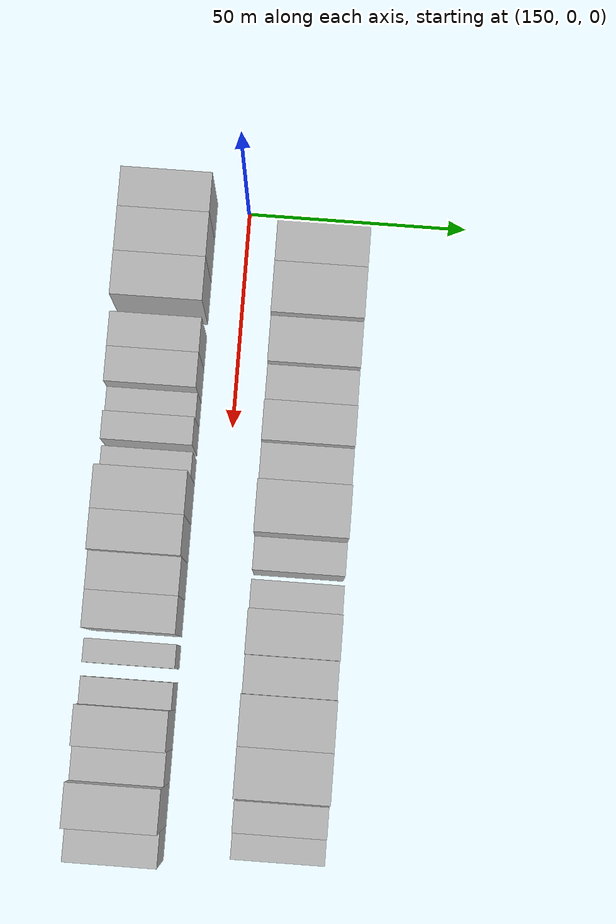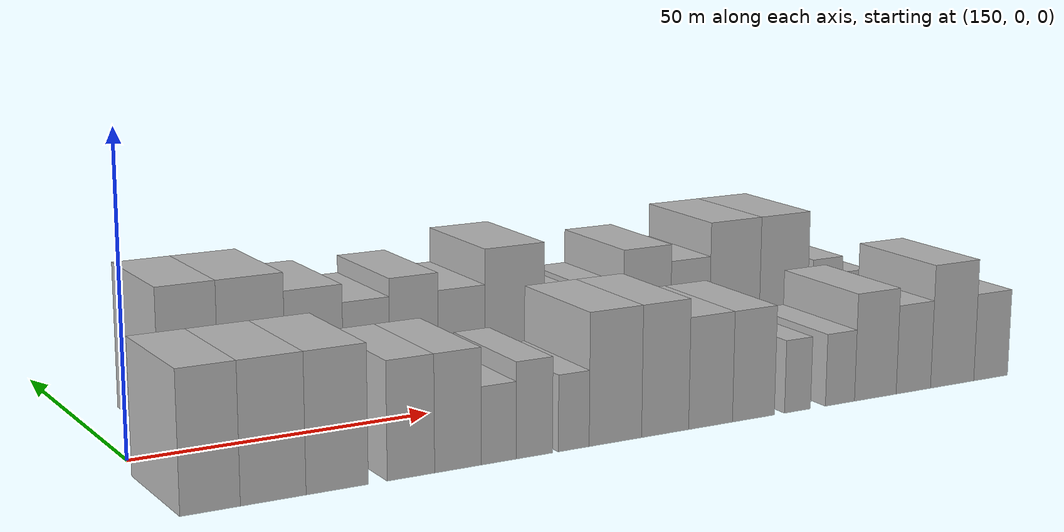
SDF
<sdf version="1.6">
 <world name="default">
  <model name="building_18">
   <static>1</static>
   <pose>162.6787 17.5000 0 0.000000 0.000000 1.570796</pose>
   <link name="link">
    <pose>0 0 12.00 0 0 0</pose>
    <collision name="collision"><geometry><box><size>20.0000 9.7751 24.0000</size></box></geometry></collision>
    <visual name="visual">
     <cast_shadows>0</cast_shadows>
     <geometry><box><size>20.0000 9.7751 24.0000</size></box></geometry>
     <material>
      <script>
       <uri>model://HANNAS_wall/materials/scripts</uri>
       <uri>model://HANNAS_wall/materials/textures</uri>
       <name>vrc/HANNAS_wall</name>
      </script>
     </material>
    </visual>
   </link>
  </model>
  <model name="building_19">
   <static>1</static>
   <pose>173.1793 17.5000 0 0.000000 0.000000 1.570796</pose>
   <link name="link">
    <pose>0 0 12.00 0 0 0</pose>
    <collision name="collision"><geometry><box><size>20.0000 11.2261 24.0000</size></box></geometry></collision>
    <visual name="visual">
     <cast_shadows>0</cast_shadows>
     <geometry><box><size>20.0000 11.2261 24.0000</size></box></geometry>
     <material>
      <script>
       <uri>model://HANNAS_wall/materials/scripts</uri>
       <uri>model://HANNAS_wall/materials/textures</uri>
       <name>vrc/HANNAS_wall</name>
      </script>
     </material>
    </visual>
   </link>
  </model>
  <model name="building_20">
   <static>1</static>
   <pose>183.7918 17.5000 0 0.000000 0.000000 1.570796</pose>
   <link name="link">
    <pose>0 0 10.50 0 0 0</pose>
    <collision name="collision"><geometry><box><size>20.0000 9.9990 21.0000</size></box></geometry></collision>
    <visual name="visual">
     <cast_shadows>0</cast_shadows>
     <geometry><box><size>20.0000 9.9990 21.0000</size></box></geometry>
     <material>
      <script>
       <uri>model://HANNAS_wall/materials/scripts</uri>
       <uri>model://HANNAS_wall/materials/textures</uri>
       <name>vrc/HANNAS_wall</name>
      </script>
     </material>
    </visual>
   </link>
  </model>
  <model name="building_21">
   <static>1</static>
   <pose>192.9205 17.5000 0 0.000000 0.000000 1.570796</pose>
   <link name="link">
    <pose>0 0 9.00 0 0 0</pose>
    <collision name="collision"><geometry><box><size>20.0000 8.2584 18.0000</size></box></geometry></collision>
    <visual name="visual">
     <cast_shadows>0</cast_shadows>
     <geometry><box><size>20.0000 8.2584 18.0000</size></box></geometry>
     <material>
      <script>
       <uri>model://HANNAS_wall/materials/scripts</uri>
       <uri>model://HANNAS_wall/materials/textures</uri>
       <name>vrc/HANNAS_wall</name>
      </script>
     </material>
    </visual>
   </link>
  </model>
  <model name="building_22">
   <static>1</static>
   <pose>201.4533 17.5000 0 0.000000 0.000000 1.570796</pose>
   <link name="link">
    <pose>0 0 10.50 0 0 0</pose>
    <collision name="collision"><geometry><box><size>20.0000 8.8072 21.0000</size></box></geometry></collision>
    <visual name="visual">
     <cast_shadows>0</cast_shadows>
     <geometry><box><size>20.0000 8.8072 21.0000</size></box></geometry>
     <material>
      <script>
       <uri>model://HANNAS_wall/materials/scripts</uri>
       <uri>model://HANNAS_wall/materials/textures</uri>
       <name>vrc/HANNAS_wall</name>
      </script>
     </material>
    </visual>
   </link>
  </model>
  <model name="building_23">
   <static>1</static>
   <pose>210.2037 17.5000 0 0.000000 0.000000 1.570796</pose>
   <link name="link">
    <pose>0 0 9.00 0 0 0</pose>
    <collision name="collision"><geometry><box><size>20.0000 8.6935 18.0000</size></box></geometry></collision>
    <visual name="visual">
     <cast_shadows>0</cast_shadows>
     <geometry><box><size>20.0000 8.6935 18.0000</size></box></geometry>
     <material>
      <script>
       <uri>model://HANNAS_wall/materials/scripts</uri>
       <uri>model://HANNAS_wall/materials/textures</uri>
       <name>vrc/HANNAS_wall</name>
      </script>
     </material>
    </visual>
   </link>
  </model>
  <model name="building_24">
   <static>1</static>
   <pose>220.1891 17.5000 0 0.000000 0.000000 1.570796</pose>
   <link name="link">
    <pose>0 0 12.00 0 0 0</pose>
    <collision name="collision"><geometry><box><size>20.0000 11.2774 24.0000</size></box></geometry></collision>
    <visual name="visual">
     <cast_shadows>0</cast_shadows>
     <geometry><box><size>20.0000 11.2774 24.0000</size></box></geometry>
     <material>
      <script>
       <uri>model://HANNAS_wall/materials/scripts</uri>
       <uri>model://HANNAS_wall/materials/textures</uri>
       <name>vrc/HANNAS_wall</name>
      </script>
     </material>
    </visual>
   </link>
  </model>
  <model name="building_25">
   <static>1</static>
   <pose>229.4601 17.5000 0 0.000000 0.000000 1.570796</pose>
   <link name="link">
    <pose>0 0 7.50 0 0 0</pose>
    <collision name="collision"><geometry><box><size>20.0000 7.2645 15.0000</size></box></geometry></collision>
    <visual name="visual">
     <cast_shadows>0</cast_shadows>
     <geometry><box><size>20.0000 7.2645 15.0000</size></box></geometry>
     <material>
      <script>
       <uri>model://HANNAS_wall/materials/scripts</uri>
       <uri>model://HANNAS_wall/materials/textures</uri>
       <name>vrc/HANNAS_wall</name>
      </script>
     </material>
    </visual>
   </link>
  </model>
  <model name="building_26">
   <static>1</static>
   <pose>238.3251 17.5000 0 0.000000 0.000000 1.570796</pose>
   <link name="link">
    <pose>0 0 7.50 0 0 0</pose>
    <collision name="collision"><geometry><box><size>20.0000 6.4654 15.0000</size></box></geometry></collision>
    <visual name="visual">
     <cast_shadows>0</cast_shadows>
     <geometry><box><size>20.0000 6.4654 15.0000</size></box></geometry>
     <material>
      <script>
       <uri>model://HANNAS_wall/materials/scripts</uri>
       <uri>model://HANNAS_wall/materials/textures</uri>
       <name>vrc/HANNAS_wall</name>
      </script>
     </material>
    </visual>
   </link>
  </model>
  <model name="building_27">
   <static>1</static>
   <pose>246.3901 17.5000 0 0.000000 0.000000 1.570796</pose>
   <link name="link">
    <pose>0 0 10.50 0 0 0</pose>
    <collision name="collision"><geometry><box><size>20.0000 9.6647 21.0000</size></box></geometry></collision>
    <visual name="visual">
     <cast_shadows>0</cast_shadows>
     <geometry><box><size>20.0000 9.6647 21.0000</size></box></geometry>
     <material>
      <script>
       <uri>model://HANNAS_wall/materials/scripts</uri>
       <uri>model://HANNAS_wall/materials/textures</uri>
       <name>vrc/HANNAS_wall</name>
      </script>
     </material>
    </visual>
   </link>
  </model>
  <model name="building_28">
   <static>1</static>
   <pose>255.3139 17.5000 0 0.000000 0.000000 1.570796</pose>
   <link name="link">
    <pose>0 0 9.00 0 0 0</pose>
    <collision name="collision"><geometry><box><size>20.0000 8.1829 18.0000</size></box></geometry></collision>
    <visual name="visual">
     <cast_shadows>0</cast_shadows>
     <geometry><box><size>20.0000 8.1829 18.0000</size></box></geometry>
     <material>
      <script>
       <uri>model://HANNAS_wall/materials/scripts</uri>
       <uri>model://HANNAS_wall/materials/textures</uri>
       <name>vrc/HANNAS_wall</name>
      </script>
     </material>
    </visual>
   </link>
  </model>
  <model name="building_29">
   <static>1</static>
   <pose>264.7660 17.5000 0 0.000000 0.000000 1.570796</pose>
   <link name="link">
    <pose>0 0 12.00 0 0 0</pose>
    <collision name="collision"><geometry><box><size>20.0000 10.7212 24.0000</size></box></geometry></collision>
    <visual name="visual">
     <cast_shadows>0</cast_shadows>
     <geometry><box><size>20.0000 10.7212 24.0000</size></box></geometry>
     <material>
      <script>
       <uri>model://HANNAS_wall/materials/scripts</uri>
       <uri>model://HANNAS_wall/materials/textures</uri>
       <name>vrc/HANNAS_wall</name>
      </script>
     </material>
    </visual>
   </link>
  </model>
  <model name="building_30">
   <static>1</static>
   <pose>275.4392 17.5000 0 0.000000 0.000000 1.570796</pose>
   <link name="link">
    <pose>0 0 12.00 0 0 0</pose>
    <collision name="collision"><geometry><box><size>20.0000 10.6250 24.0000</size></box></geometry></collision>
    <visual name="visual">
     <cast_shadows>0</cast_shadows>
     <geometry><box><size>20.0000 10.6250 24.0000</size></box></geometry>
     <material>
      <script>
       <uri>model://HANNAS_wall/materials/scripts</uri>
       <uri>model://HANNAS_wall/materials/textures</uri>
       <name>vrc/HANNAS_wall</name>
      </script>
     </material>
    </visual>
   </link>
  </model>
  <model name="building_31">
   <static>1</static>
   <pose>285.1096 17.5000 0 0.000000 0.000000 1.570796</pose>
   <link name="link">
    <pose>0 0 7.50 0 0 0</pose>
    <collision name="collision"><geometry><box><size>20.0000 6.7159 15.0000</size></box></geometry></collision>
    <visual name="visual">
     <cast_shadows>0</cast_shadows>
     <geometry><box><size>20.0000 6.7159 15.0000</size></box></geometry>
     <material>
      <script>
       <uri>model://HANNAS_wall/materials/scripts</uri>
       <uri>model://HANNAS_wall/materials/textures</uri>
       <name>vrc/HANNAS_wall</name>
      </script>
     </material>
    </visual>
   </link>
  </model>
  <model name="building_32">
   <static>1</static>
   <pose>291.3562 17.5000 0 0.000000 0.000000 1.570796</pose>
   <link name="link">
    <pose>0 0 6.00 0 0 0</pose>
    <collision name="collision"><geometry><box><size>20.0000 5.7774 12.0000</size></box></geometry></collision>
    <visual name="visual">
     <cast_shadows>0</cast_shadows>
     <geometry><box><size>20.0000 5.7774 12.0000</size></box></geometry>
     <material>
      <script>
       <uri>model://HANNAS_wall/materials/scripts</uri>
       <uri>model://HANNAS_wall/materials/textures</uri>
       <name>vrc/HANNAS_wall</name>
      </script>
     </material>
    </visual>
   </link>
  </model>
  <model name="building_47">
   <static>1</static>
   <pose>152.5886 -17.5000 0 0.000000 0.000000 1.570796</pose>
   <link name="link">
    <pose>0 0 10.50 0 0 0</pose>
    <collision name="collision"><geometry><box><size>20.0000 8.8843 21.0000</size></box></geometry></collision>
    <visual name="visual">
     <cast_shadows>0</cast_shadows>
     <geometry><box><size>20.0000 8.8843 21.0000</size></box></geometry>
     <material>
      <script>
       <uri>model://HANNAS_wall/materials/scripts</uri>
       <uri>model://HANNAS_wall/materials/textures</uri>
       <name>vrc/HANNAS_wall</name>
      </script>
     </material>
    </visual>
   </link>
  </model>
  <model name="building_48">
   <static>1</static>
   <pose>161.9919 -17.5000 0 0.000000 0.000000 1.570796</pose>
   <link name="link">
    <pose>0 0 10.50 0 0 0</pose>
    <collision name="collision"><geometry><box><size>20.0000 9.9223 21.0000</size></box></geometry></collision>
    <visual name="visual">
     <cast_shadows>0</cast_shadows>
     <geometry><box><size>20.0000 9.9223 21.0000</size></box></geometry>
     <material>
      <script>
       <uri>model://HANNAS_wall/materials/scripts</uri>
       <uri>model://HANNAS_wall/materials/textures</uri>
       <name>vrc/HANNAS_wall</name>
      </script>
     </material>
    </visual>
   </link>
  </model>
  <model name="building_49">
   <static>1</static>
   <pose>171.8002 -17.5000 0 0.000000 0.000000 1.570796</pose>
   <link name="link">
    <pose>0 0 10.50 0 0 0</pose>
    <collision name="collision"><geometry><box><size>20.0000 9.6943 21.0000</size></box></geometry></collision>
    <visual name="visual">
     <cast_shadows>0</cast_shadows>
     <geometry><box><size>20.0000 9.6943 21.0000</size></box></geometry>
     <material>
      <script>
       <uri>model://HANNAS_wall/materials/scripts</uri>
       <uri>model://HANNAS_wall/materials/textures</uri>
       <name>vrc/HANNAS_wall</name>
      </script>
     </material>
    </visual>
   </link>
  </model>
  <model name="building_50">
   <static>1</static>
   <pose>183.4804 -17.5000 0 0.000000 0.000000 1.570796</pose>
   <link name="link">
    <pose>0 0 9.00 0 0 0</pose>
    <collision name="collision"><geometry><box><size>20.0000 7.6661 18.0000</size></box></geometry></collision>
    <visual name="visual">
     <cast_shadows>0</cast_shadows>
     <geometry><box><size>20.0000 7.6661 18.0000</size></box></geometry>
     <material>
      <script>
       <uri>model://HANNAS_wall/materials/scripts</uri>
       <uri>model://HANNAS_wall/materials/textures</uri>
       <name>vrc/HANNAS_wall</name>
      </script>
     </material>
    </visual>
   </link>
  </model>
  <model name="building_51">
   <static>1</static>
   <pose>191.1825 -17.5000 0 0.000000 0.000000 1.570796</pose>
   <link name="link">
    <pose>0 0 9.00 0 0 0</pose>
    <collision name="collision"><geometry><box><size>20.0000 7.7380 18.0000</size></box></geometry></collision>
    <visual name="visual">
     <cast_shadows>0</cast_shadows>
     <geometry><box><size>20.0000 7.7380 18.0000</size></box></geometry>
     <material>
      <script>
       <uri>model://HANNAS_wall/materials/scripts</uri>
       <uri>model://HANNAS_wall/materials/textures</uri>
       <name>vrc/HANNAS_wall</name>
      </script>
     </material>
    </visual>
   </link>
  </model>
  <model name="building_52">
   <static>1</static>
   <pose>198.0008 -17.5000 0 0.000000 0.000000 1.570796</pose>
   <link name="link">
    <pose>0 0 6.00 0 0 0</pose>
    <collision name="collision"><geometry><box><size>20.0000 5.8988 12.0000</size></box></geometry></collision>
    <visual name="visual">
     <cast_shadows>0</cast_shadows>
     <geometry><box><size>20.0000 5.8988 12.0000</size></box></geometry>
     <material>
      <script>
       <uri>model://HANNAS_wall/materials/scripts</uri>
       <uri>model://HANNAS_wall/materials/textures</uri>
       <name>vrc/HANNAS_wall</name>
      </script>
     </material>
    </visual>
   </link>
  </model>
  <model name="building_53">
   <static>1</static>
   <pose>204.0753 -17.5000 0 0.000000 0.000000 1.570796</pose>
   <link name="link">
    <pose>0 0 7.50 0 0 0</pose>
    <collision name="collision"><geometry><box><size>20.0000 6.2501 15.0000</size></box></geometry></collision>
    <visual name="visual">
     <cast_shadows>0</cast_shadows>
     <geometry><box><size>20.0000 6.2501 15.0000</size></box></geometry>
     <material>
      <script>
       <uri>model://HANNAS_wall/materials/scripts</uri>
       <uri>model://HANNAS_wall/materials/textures</uri>
       <name>vrc/HANNAS_wall</name>
      </script>
     </material>
    </visual>
   </link>
  </model>
  <model name="building_54">
   <static>1</static>
   <pose>210.9103 -17.5000 0 0.000000 0.000000 1.570796</pose>
   <link name="link">
    <pose>0 0 6.00 0 0 0</pose>
    <collision name="collision"><geometry><box><size>20.0000 5.4200 12.0000</size></box></geometry></collision>
    <visual name="visual">
     <cast_shadows>0</cast_shadows>
     <geometry><box><size>20.0000 5.4200 12.0000</size></box></geometry>
     <material>
      <script>
       <uri>model://HANNAS_wall/materials/scripts</uri>
       <uri>model://HANNAS_wall/materials/textures</uri>
       <name>vrc/HANNAS_wall</name>
      </script>
     </material>
    </visual>
   </link>
  </model>
  <model name="building_55">
   <static>1</static>
   <pose>218.3351 -17.5000 0 0.000000 0.000000 1.570796</pose>
   <link name="link">
    <pose>0 0 10.50 0 0 0</pose>
    <collision name="collision"><geometry><box><size>20.0000 9.4296 21.0000</size></box></geometry></collision>
    <visual name="visual">
     <cast_shadows>0</cast_shadows>
     <geometry><box><size>20.0000 9.4296 21.0000</size></box></geometry>
     <material>
      <script>
       <uri>model://HANNAS_wall/materials/scripts</uri>
       <uri>model://HANNAS_wall/materials/textures</uri>
       <name>vrc/HANNAS_wall</name>
      </script>
     </material>
    </visual>
   </link>
  </model>
  <model name="building_56">
   <static>1</static>
   <pose>227.3933 -17.5000 0 0.000000 0.000000 1.570796</pose>
   <link name="link">
    <pose>0 0 10.50 0 0 0</pose>
    <collision name="collision"><geometry><box><size>20.0000 8.6869 21.0000</size></box></geometry></collision>
    <visual name="visual">
     <cast_shadows>0</cast_shadows>
     <geometry><box><size>20.0000 8.6869 21.0000</size></box></geometry>
     <material>
      <script>
       <uri>model://HANNAS_wall/materials/scripts</uri>
       <uri>model://HANNAS_wall/materials/textures</uri>
       <name>vrc/HANNAS_wall</name>
      </script>
     </material>
    </visual>
   </link>
  </model>
  <model name="building_57">
   <static>1</static>
   <pose>235.8805 -17.5000 0 0.000000 0.000000 1.570796</pose>
   <link name="link">
    <pose>0 0 9.00 0 0 0</pose>
    <collision name="collision"><geometry><box><size>20.0000 8.2874 18.0000</size></box></geometry></collision>
    <visual name="visual">
     <cast_shadows>0</cast_shadows>
     <geometry><box><size>20.0000 8.2874 18.0000</size></box></geometry>
     <material>
      <script>
       <uri>model://HANNAS_wall/materials/scripts</uri>
       <uri>model://HANNAS_wall/materials/textures</uri>
       <name>vrc/HANNAS_wall</name>
      </script>
     </material>
    </visual>
   </link>
  </model>
  <model name="building_58">
   <static>1</static>
   <pose>244.0837 -17.5000 0 0.000000 0.000000 1.570796</pose>
   <link name="link">
    <pose>0 0 9.00 0 0 0</pose>
    <collision name="collision"><geometry><box><size>20.0000 8.1191 18.0000</size></box></geometry></collision>
    <visual name="visual">
     <cast_shadows>0</cast_shadows>
     <geometry><box><size>20.0000 8.1191 18.0000</size></box></geometry>
     <material>
      <script>
       <uri>model://HANNAS_wall/materials/scripts</uri>
       <uri>model://HANNAS_wall/materials/textures</uri>
       <name>vrc/HANNAS_wall</name>
      </script>
     </material>
    </visual>
   </link>
  </model>
  <model name="building_59">
   <static>1</static>
   <pose>252.7217 -17.5000 0 0.000000 0.000000 1.570796</pose>
   <link name="link">
    <pose>0 0 6.00 0 0 0</pose>
    <collision name="collision"><geometry><box><size>20.0000 5.1569 12.0000</size></box></geometry></collision>
    <visual name="visual">
     <cast_shadows>0</cast_shadows>
     <geometry><box><size>20.0000 5.1569 12.0000</size></box></geometry>
     <material>
      <script>
       <uri>model://HANNAS_wall/materials/scripts</uri>
       <uri>model://HANNAS_wall/materials/textures</uri>
       <name>vrc/HANNAS_wall</name>
      </script>
     </material>
    </visual>
   </link>
  </model>
  <model name="building_60">
   <static>1</static>
   <pose>261.2571 -17.5000 0 0.000000 0.000000 1.570796</pose>
   <link name="link">
    <pose>0 0 6.00 0 0 0</pose>
    <collision name="collision"><geometry><box><size>20.0000 5.9138 12.0000</size></box></geometry></collision>
    <visual name="visual">
     <cast_shadows>0</cast_shadows>
     <geometry><box><size>20.0000 5.9138 12.0000</size></box></geometry>
     <material>
      <script>
       <uri>model://HANNAS_wall/materials/scripts</uri>
       <uri>model://HANNAS_wall/materials/textures</uri>
       <name>vrc/HANNAS_wall</name>
      </script>
     </material>
    </visual>
   </link>
  </model>
  <model name="building_61">
   <static>1</static>
   <pose>268.5396 -17.5000 0 0.000000 0.000000 1.570796</pose>
   <link name="link">
    <pose>0 0 9.00 0 0 0</pose>
    <collision name="collision"><geometry><box><size>20.0000 8.6513 18.0000</size></box></geometry></collision>
    <visual name="visual">
     <cast_shadows>0</cast_shadows>
     <geometry><box><size>20.0000 8.6513 18.0000</size></box></geometry>
     <material>
      <script>
       <uri>model://HANNAS_wall/materials/scripts</uri>
       <uri>model://HANNAS_wall/materials/textures</uri>
       <name>vrc/HANNAS_wall</name>
      </script>
     </material>
    </visual>
   </link>
  </model>
  <model name="building_62">
   <static>1</static>
   <pose>276.5074 -17.5000 0 0.000000 0.000000 1.570796</pose>
   <link name="link">
    <pose>0 0 7.50 0 0 0</pose>
    <collision name="collision"><geometry><box><size>20.0000 7.2844 15.0000</size></box></geometry></collision>
    <visual name="visual">
     <cast_shadows>0</cast_shadows>
     <geometry><box><size>20.0000 7.2844 15.0000</size></box></geometry>
     <material>
      <script>
       <uri>model://HANNAS_wall/materials/scripts</uri>
       <uri>model://HANNAS_wall/materials/textures</uri>
       <name>vrc/HANNAS_wall</name>
      </script>
     </material>
    </visual>
   </link>
  </model>
  <model name="building_63">
   <static>1</static>
   <pose>284.8412 -17.5000 0 0.000000 0.000000 1.570796</pose>
   <link name="link">
    <pose>0 0 10.50 0 0 0</pose>
    <collision name="collision"><geometry><box><size>20.0000 9.3831 21.0000</size></box></geometry></collision>
    <visual name="visual">
     <cast_shadows>0</cast_shadows>
     <geometry><box><size>20.0000 9.3831 21.0000</size></box></geometry>
     <material>
      <script>
       <uri>model://HANNAS_wall/materials/scripts</uri>
       <uri>model://HANNAS_wall/materials/textures</uri>
       <name>vrc/HANNAS_wall</name>
      </script>
     </material>
    </visual>
   </link>
  </model>
  <model name="building_64">
   <static>1</static>
   <pose>293.2794 -17.5000 0 0.000000 0.000000 1.570796</pose>
   <link name="link">
    <pose>0 0 7.50 0 0 0</pose>
    <collision name="collision"><geometry><box><size>20.0000 7.4933 15.0000</size></box></geometry></collision>
    <visual name="visual">
     <cast_shadows>0</cast_shadows>
     <geometry><box><size>20.0000 7.4933 15.0000</size></box></geometry>
     <material>
      <script>
       <uri>model://HANNAS_wall/materials/scripts</uri>
       <uri>model://HANNAS_wall/materials/textures</uri>
       <name>vrc/HANNAS_wall</name>
      </script>
     </material>
    </visual>
   </link>
  </model>
 </world>
</sdf>
